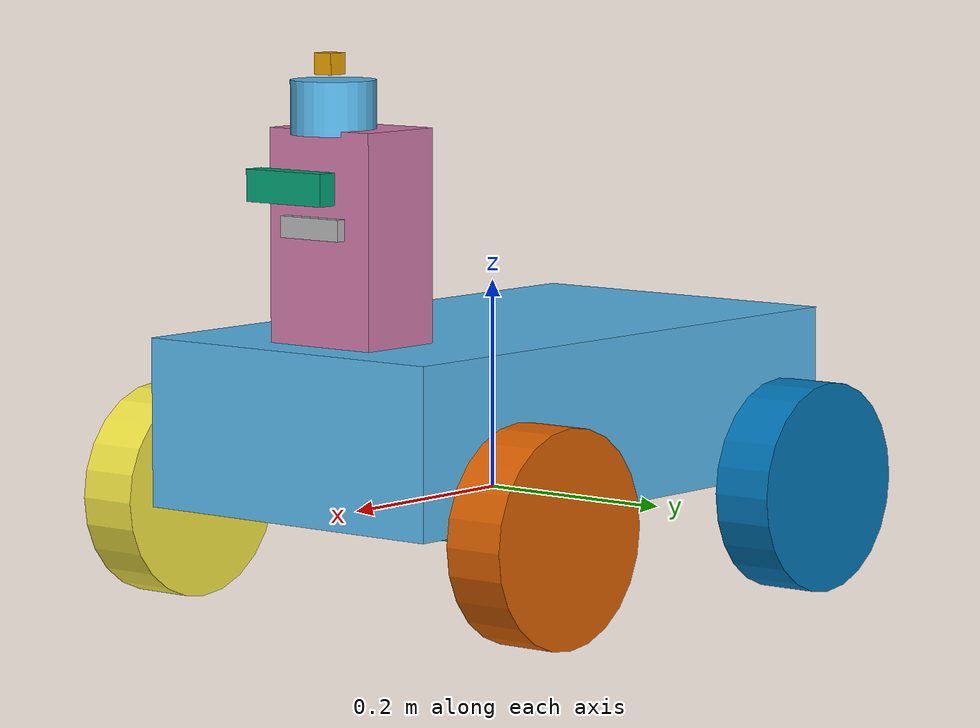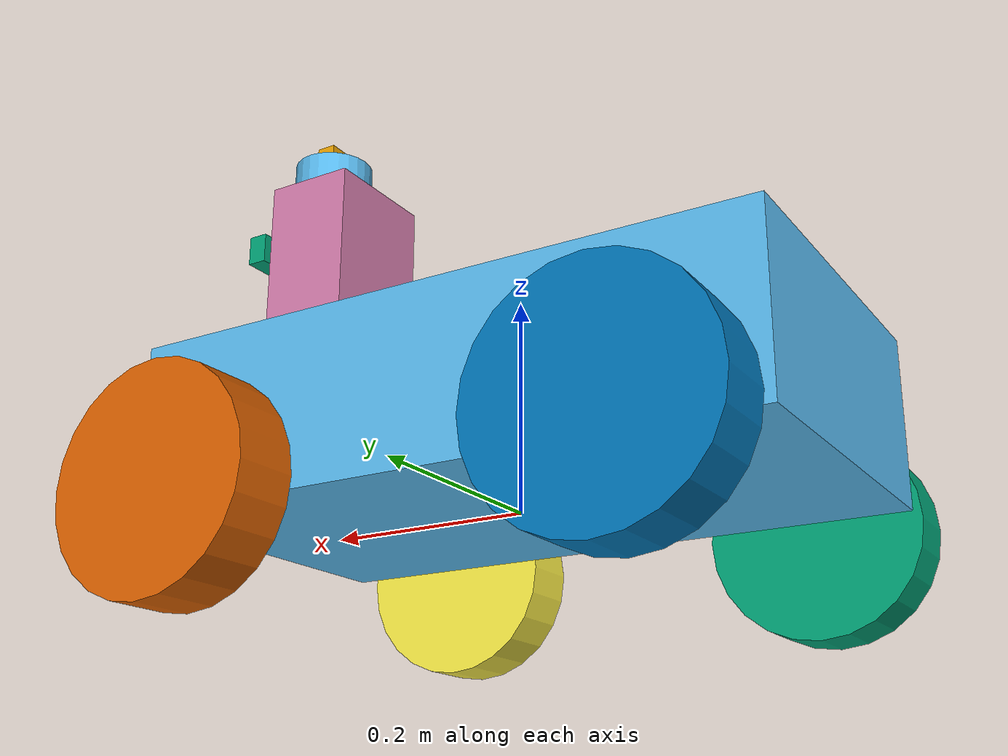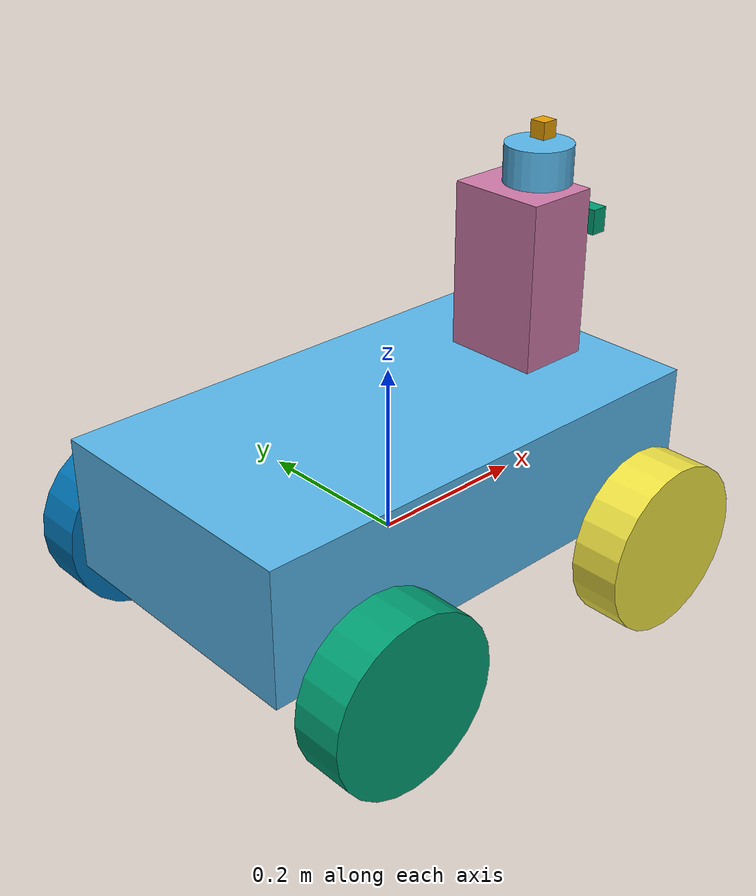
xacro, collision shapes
<?xml version="1.0"?>
<robot name="mickrobot" xmlns:xacro="http://ros.org/wiki/xacro">
  <link name="base_footprint">
    <visual>
      <geometry>
        <sphere radius="0.001" />
      </geometry>
      <material name="invisible">
        <color rgba="0 0 0 0"/>
      </material>
    </visual>
  </link>
<joint name="base_joint" type="fixed">
  <parent link="base_footprint"/>
  <child link="base_link"/>
  <!-- 鍋囪 base_link 鍘熺偣鍦ㄨ溅澶达紝鑰屽嚑浣曚腑蹇冨湪杞﹁締鍚庣Щ 0.2 绫充笖鍙崇Щ 0.1 绫崇殑浣嶇疆 -->
  <origin xyz="0.0 0.0 0.0" rpy="0 0 0"/>
</joint>

  <!-- base -->
  <link name="base_link">
    <visual>
      <origin xyz="-0.3 -0.1665 0.0" rpy="0 0 0"/>
      <geometry>
        <mesh filename="file://$(find mickrobot_description)/urdf/mesh/mickx4_body.STL" scale="0.001 0.001 0.001"/>
      </geometry>
    </visual>

    <collision>
      <origin xyz="0.0 0.0 0.08" rpy="0 0 0"/>
      <geometry>
        <box size="0.6 0.333 0.16"/>
      </geometry>
    </collision>

    <inertial>
      <mass value="25"/>
      <origin xyz="0.0 0.0 0.08" rpy="0 0 0"/>
      <inertia
        ixx="0.284" ixy="0" ixz="0"
        iyy="0.803" iyz="0"
        izz="0.981"/>
    </inertial>
  </link>

  <!-- right_back_wheel 0 -0.119 0.111-->
  <link   name="right_back_wheel">
    <visual>
      <origin xyz="0.12 0 -0.11" rpy="0 0 1.57079"/>
      <geometry>
        <mesh filename="file://$(find mickrobot_description)/urdf/mesh/mickx4_wheel_8inches_2.STL" scale="0.001 0.001 0.001"/>
      </geometry>
    </visual>

    <collision>
      <origin xyz="-0 0.035 0" rpy="0 1.57079 -1.57079"/>
      <geometry>
        <cylinder radius="0.1016" length="0.06"/>
      </geometry>
    </collision>

    <inertial>
      <mass value="1"/>
      <origin xyz="-0. 0.035 0" rpy="0 1.57079 -1.57079"/>
      <inertia ixx="0.00288" ixy="0.0" ixz="0.0" iyy="0.00288" iyz="0.0" izz="0.00516"/>
    </inertial>
  </link>
聽
  <joint   name="right_back_wheel_joint" type="continuous">
    <axis xyz="1 0 0"/>
    <parent   link="base_link"/>
    <child   link="right_back_wheel"/>
    <origin   xyz="-0.2 -0.26 0.0"/>
    <limit effort="100"   velocity="100"/>
  </joint>
  <!-- right_front_wheel -->
  <link   name="right_front_wheel">
    <visual>
      <origin xyz="0.12 0 -0.11" rpy="0 0 1.57079"/>
      <geometry>
        <mesh filename="file://$(find mickrobot_description)/urdf/mesh/mickx4_wheel_8inches_2.STL" scale="0.001 0.001 0.001"/>
      </geometry>
    </visual>

    <collision>
      <origin xyz="-0 0.035 0" rpy="0 1.57079 -1.57079"/>
      <geometry>
        <cylinder radius="0.1016" length="0.06"/>
      </geometry>
    </collision>

    <inertial>
      <mass value="1"/>
      <origin xyz="-0. 0.035 0" rpy="0 1.57079 -1.57079"/>
      <inertia ixx="0.00288" ixy="0.0" ixz="0.0" iyy="0.00288" iyz="0.0" izz="0.00516"/>
    </inertial>
  </link>
聽
  <joint   name="right_front_wheel_joint" type="continuous">
    <axis xyz="1 0 0"/>
    <parent   link="base_link"/>
    <child   link="right_front_wheel"/>
    <origin   xyz="0.2 -0.26 0.0"/>
    <limit effort="100"   velocity="100"/>
  </joint>
  <!-- left_back_wheel -->
  <link   name="left_back_wheel">
    <visual>
      <origin xyz="-0.12 0 -0.11" rpy="0 0 -1.57079"/>
      <geometry>
        <mesh filename="file://$(find mickrobot_description)/urdf/mesh/mickx4_wheel_8inches_2.STL" scale="0.001 0.001 0.001"/>
      </geometry>
    </visual>

    <collision>
      <origin xyz="0 -0.035 0" rpy="0 1.57079 -1.57079"/>
      <geometry>
        <cylinder radius="0.1016" length="0.06"/>
      </geometry>
    </collision>

    <inertial>
      <mass value="1"/>
      <origin xyz="0 -0.035 0" rpy="0 1.57079 -1.57079"/>
      <inertia ixx="0.00288" ixy="0.0" ixz="0.0" iyy="0.00288" iyz="0.0" izz="0.00516"/>
    </inertial>
  </link>
聽
  <joint   name="left_back_wheel_joint" type="continuous">
    <axis xyz="1 0 0"/>
    <parent   link="base_link"/>
    <child   link="left_back_wheel"/>
    <origin   xyz="-0.2 0.26 0.0"/>
    <limit effort="100"   velocity="100"/>
  </joint>

  <!-- left_front_wheel -->
     <link   name="left_front_wheel">
    <visual>
      <origin xyz="-0.12 0 -0.11" rpy="0 0 -1.57079"/>
      <geometry>
        <mesh filename="file://$(find mickrobot_description)/urdf/mesh/mickx4_wheel_8inches_2.STL" scale="0.001 0.001 0.001"/>
      </geometry>
    </visual>

    <collision>
      <origin xyz="0 -0.035 0" rpy="0 1.57079 -1.57079"/>
      <geometry>
        <cylinder radius="0.1016" length="0.06"/>
      </geometry>
    </collision>

    <inertial>
      <mass value="1"/>
      <origin xyz="0 -0.035 0" rpy="0 1.57079 -1.57079"/>
      <inertia ixx="0.00288" ixy="0.0" ixz="0.0" iyy="0.00288" iyz="0.0" izz="0.00516"/>
    </inertial>
  </link>
聽
  <joint   name="left_front_wheel_joint" type="continuous">
    <axis xyz="1 0 0"/>
    <parent   link="base_link"/>
    <child   link="left_front_wheel"/>
    <origin   xyz="0.2 0.26 0.0"/>
    <limit effort="100"   velocity="100"/>
  </joint>
聽

  <!-- sensor -->
  <link   name="sensor_link">
    <visual>
      <origin xyz="0 0 0" rpy="0 0 0"/>
      <geometry>
        <mesh filename="file://$(find mickrobot_description)/urdf/mesh/mickx4_sensorkit1.STL" scale="0.001 0.001 0.001"/>
      </geometry>
    </visual>

    <collision>
      <origin xyz="0.12 0.12 0.1" rpy="0 0 0 "/>
      <geometry>
        <box size="0.09 0.12 0.20"/>
      </geometry>
    </collision>

    <inertial>
      <mass value="1"/>
      <origin xyz="0.12 0.12 0.05" rpy="0 0 0"/>
      <inertia ixx="0.00333" ixy="0.0" ixz="0.0" iyy="0.00333" iyz="0.0" izz="0.00240"/>
    </inertial>
  </link>
聽
  <joint   name="sensor_joint" type="fixed">
    <parent   link="base_link"/>
    <child   link="sensor_link"/>
    <origin   xyz="0.09 -0.1165 0.16"/>
  </joint>

  <link name="imu_link">
    <visual>
    <origin xyz="0 0 0.0" rpy="0 0 0"/>
    <geometry>
          <box size="0.07 0.07 0.02"/>
    </geometry>
  </visual>

  <collision>
    <origin xyz="0.0 0.0 0.0" rpy="0.0 0.0 0.0"/>
    <geometry>
      <box size="0.07 0.07 0.02"/>
    </geometry>
  </collision>

  <inertial>
    <origin xyz="0.0 0.0 0.0" rpy="0.0 0.0 0.0"/>
    <mass value="0.5"/>
    <inertia ixx="3.333e-5" ixy="0.0" ixz="0.0" iyy="3.333e-5" iyz="0.0" izz="3.333e-5"/>
  </inertial>

  </link>

  <joint name="imu_joint" type="fixed">
    <parent link="base_link" />
    <child link="imu_link" />
    <origin xyz="0.23 0.0 0.27" rpy="0.0 0.0 0.0" />
  </joint>

  <!-- gnss -->
  <link name="gnss_link">
    <visual>
      <origin xyz="0 0 0.0" rpy="0 0 0"/>
      <geometry>
        <box size="0.02 0.02 0.02"/>
      </geometry>
    </visual>

    <collision>
      <origin xyz="0.0 0.0 0.0" rpy="0.0 0.0 0.0"/>
      <geometry>
        <box size="0.02 0.02 0.02"/>
      </geometry>
    </collision>

    <inertial>
      <origin xyz="0.0 0.0 0.0" rpy="0.0 0.0 0.0"/>
      <mass value="0.5"/>
      <inertia ixx="3.333e-5" ixy="0.0" ixz="0.0" iyy="3.333e-5" iyz="0.0" izz="3.333e-5"/>
    </inertial>

  </link>

  <joint name="gnss_joint" type="fixed">
    <parent link="base_link" />
    <child link="gnss_link" />
    <origin xyz="0.235 0.0 0.42" rpy="0.0 0.0 0.0" />
  </joint>

  <link name="laser_link">
    <visual>
      <origin xyz="0 0 0" rpy="0 0 0"/>
      <geometry>
        <cylinder length="0.05" radius="0.04"/>
      </geometry>
    </visual>

    <collision>
      <origin xyz="0 0 0" rpy="0 0 0"/>
      <geometry>
        <cylinder length="0.05" radius="0.04"/>
      </geometry>
    </collision>

    <inertial>
      <mass value="0.1"/>
      <inertia ixx="6.083e-5" ixy="0" ixz="0" iyy="6.083e-5" iyz="0" izz="8.0e-5"/>
    </inertial>
  </link>

  <joint name="laser_joint" type="fixed">
      <parent link="base_link" />
      <child link="laser_link" />
      <origin xyz="0.23 0.0 0.38" />
  </joint>

  <!-- camera -->
  <link name="camera_link">
    <visual>
      <origin xyz="0 0 0" rpy="0 0 0"/>
      <geometry>
        <box size="0.02 0.09 0.03"/>
      </geometry>
    </visual>

    <inertial>
      <mass value="0.1"/>
      <origin xyz="0 0 0" rpy="0 0 0"/>
      <inertia ixx="6.083e-5" ixy="0" ixz="0" iyy="6.083e-5" iyz="0" izz="6.083e-5"/>
    </inertial>

    <collision>
      <origin xyz="0 0 0" rpy="0 0 0"/>
      <geometry>
        <box size="0.02 0.09 0.03"/>
      </geometry>
    </collision>
  </link>

  <joint name="camera_joint" type="fixed">
    <parent link="base_link"/>
    <child link="camera_link"/>
    <origin xyz="0.29 0.0 0.31" rpy="0 0 0"/>
  </joint>

</robot>
